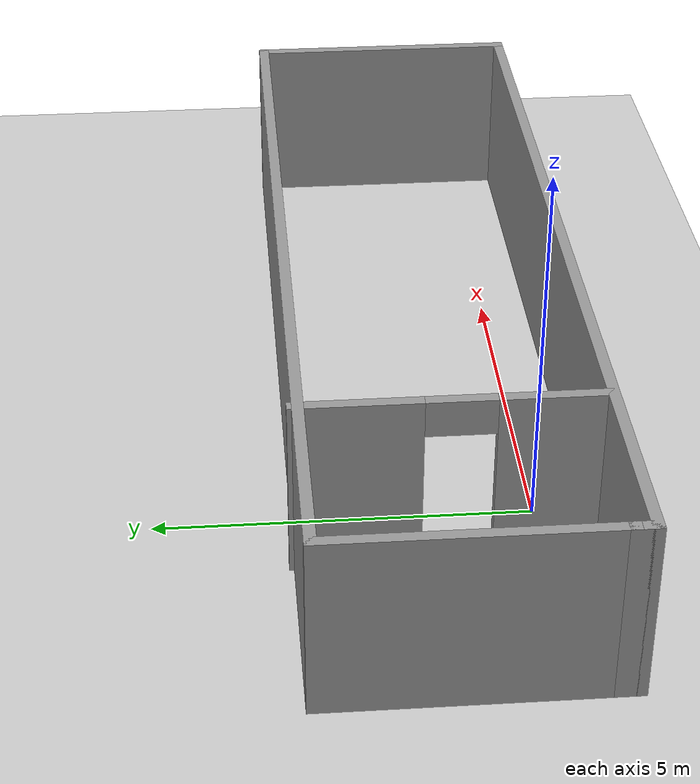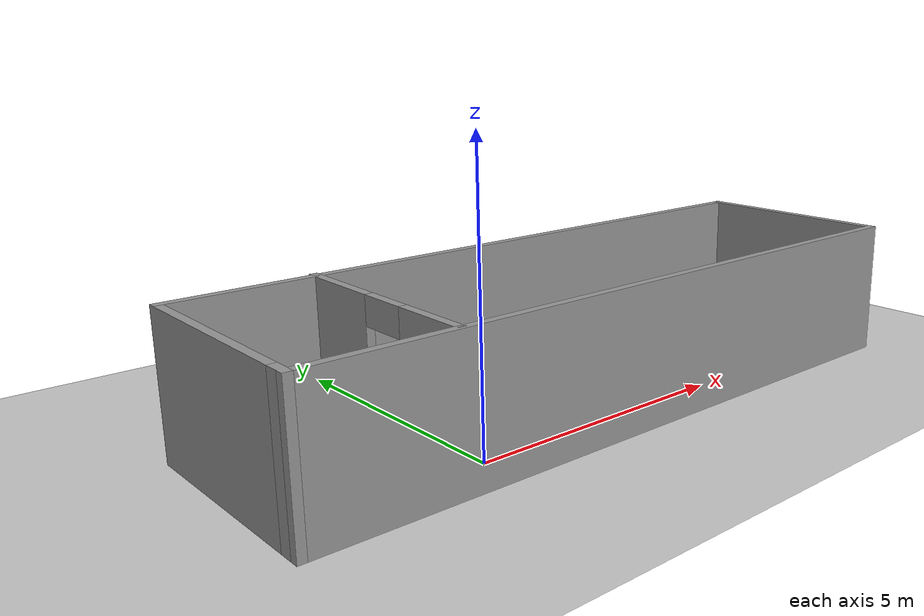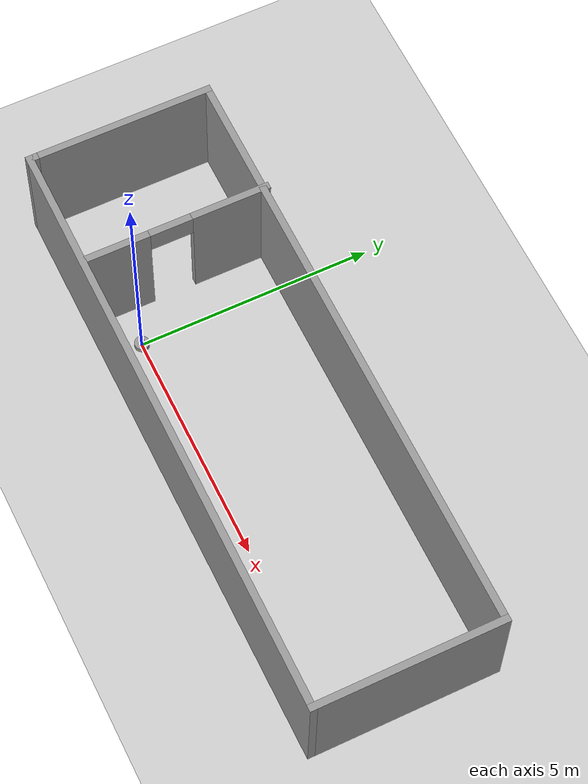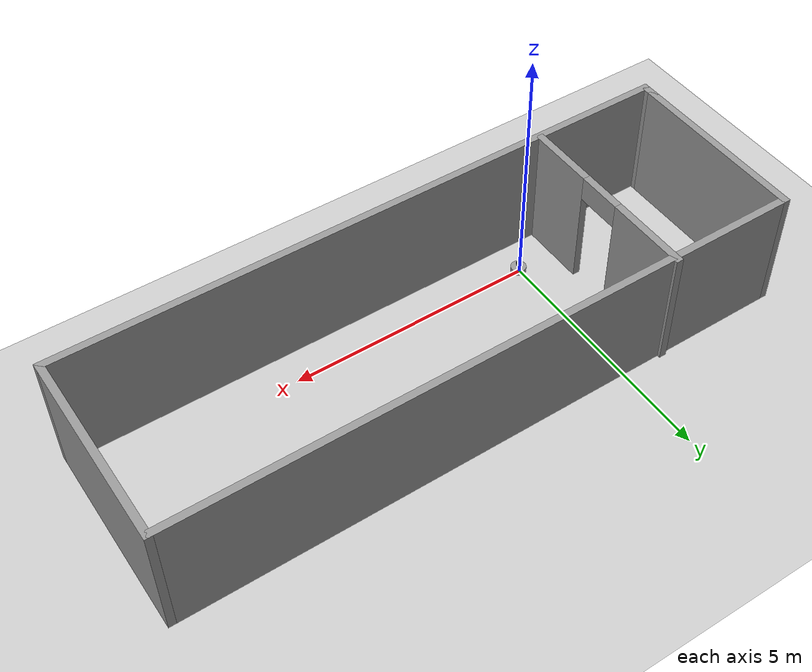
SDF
<sdf version="1.7">
 <world name="default">
  <light name="sun" type="directional">
   <pose>0 0 10 0 -0 0</pose>
   <diffuse>0.8 0.8 0.8 1</diffuse>
   <specular>0.2 0.2 0.2 1</specular>
   <attenuation>
    <range>1000</range>
    <constant>0.9</constant>
    <linear>0.01</linear>
    <quadratic>0.001</quadratic>
   </attenuation>
   <direction>-0.5 0.1 -0.9</direction>
   <spot><inner_angle>0</inner_angle><outer_angle>0</outer_angle><falloff>0</falloff></spot>
  </light>
  <model name="ground_plane">
   <static>1</static>
   <link name="link">
    <collision name="collision">
     <geometry><plane><normal>0 0 1</normal><size>100 100</size></plane></geometry>
     <surface>
      <contact><collide_bitmask>65535</collide_bitmask></contact>
      <friction><ode><mu>100</mu><mu2>50</mu2></ode></friction>
     </surface>
    </collision>
    <visual name="visual">
     <cast_shadows>0</cast_shadows>
     <geometry><plane><normal>0 0 1</normal><size>100 100</size></plane></geometry>
     <material>
      <script><uri>file://media/materials/scripts/gazebo.material</uri><name>Gazebo/Grey</name></script>
     </material>
    </visual>
   </link>
  </model>
  <gravity>0 0 -9.8</gravity>
  <magnetic_field>6e-06 2.3e-05 -4.2e-05</magnetic_field>
  <atmosphere type="adiabatic"/>
  <physics type="ode">
   <max_step_size>0.001</max_step_size>
   <real_time_factor>1</real_time_factor>
   <real_time_update_rate>1000</real_time_update_rate>
  </physics>
  <scene><ambient>0.4 0.4 0.4 1</ambient><background>0.7 0.7 0.7 1</background><shadows>1</shadows></scene>
  <spherical_coordinates>
   <surface_model>EARTH_WGS84</surface_model>
   <latitude_deg>0</latitude_deg>
   <longitude_deg>0</longitude_deg>
   <elevation>0</elevation>
   <heading_deg>0</heading_deg>
  </spherical_coordinates>
  <model name="my_bot">
   <link name="base_link">
    <inertial>
     <pose>-0.07598 0 0.053416 0 -0 0</pose>
     <mass>1.02</mass>
     <inertia>
      <ixx>0.00313923</ixx>
      <ixy>0</ixy>
      <ixz>0.000122784</ixz>
      <iyy>0.0036775</iyy>
      <iyz>0</iyz>
      <izz>0.00454324</izz>
     </inertia>
    </inertial>
    <collision name="base_link_fixed_joint_lump__back_caster_wheel_link_collision">
     <pose>-0.145 0 -0.0258 0 -0 0</pose>
     <geometry><sphere><radius>0.01</radius></sphere></geometry>
     <surface><friction><ode><mu>0.001</mu><mu2>0.001</mu2></ode></friction></surface>
    </collision>
    <collision name="base_link_fixed_joint_lump__front_caster_wheel_link_collision_1">
     <pose>0.145 0 -0.0258 0 -0 0</pose>
     <geometry><sphere><radius>0.01</radius></sphere></geometry>
     <surface><friction><ode><mu>0.001</mu><mu2>0.001</mu2></ode></friction></surface>
    </collision>
    <visual name="base_link_fixed_joint_lump__chassis_link_visual">
     <pose>0 0 0.055 0 -0 0</pose>
     <geometry><cylinder><length>0.11</length><radius>0.155</radius></cylinder></geometry>
     <material>
      <script><name>Gazebo/Grey</name><uri>file://media/materials/scripts/gazebo.material</uri></script>
     </material>
    </visual>
    <visual name="base_link_fixed_joint_lump__back_caster_wheel_link_visual_1">
     <pose>-0.145 0 -0.0258 0 -0 0</pose>
     <geometry><sphere><radius>0.01</radius></sphere></geometry>
     <material>
      <script><name>Gazebo/Red</name><uri>file://media/materials/scripts/gazebo.material</uri></script>
     </material>
    </visual>
    <visual name="base_link_fixed_joint_lump__back_caster_holder_visual_2">
     <pose>-0.145 0 0 0 -0 0</pose>
     <geometry><cylinder><length>-0.0516</length><radius>0.005</radius></cylinder></geometry>
    </visual>
    <visual name="base_link_fixed_joint_lump__front_caster_wheel_link_visual_3">
     <pose>0.145 0 -0.0258 0 -0 0</pose>
     <geometry><sphere><radius>0.01</radius></sphere></geometry>
     <material>
      <script><name>Gazebo/Green</name><uri>file://media/materials/scripts/gazebo.material</uri></script>
     </material>
    </visual>
    <visual name="base_link_fixed_joint_lump__caster_holder_visual_4">
     <pose>0.145 0 0 0 -0 0</pose>
     <geometry><cylinder><length>-0.0516</length><radius>0.005</radius></cylinder></geometry>
    </visual>
    <visual name="base_link_fixed_joint_lump__laser_frame_visual_5">
     <pose>0 0 0.18 0 -0 0</pose>
     <geometry><cylinder><length>0.04</length><radius>0.05</radius></cylinder></geometry>
     <material>
      <script><name>Gazebo/Black</name><uri>file://media/materials/scripts/gazebo.material</uri></script>
     </material>
    </visual>
    <sensor name="laser" type="ray">
     <visualize>0</visualize>
     <update_rate>100</update_rate>
     <ray>
      <scan>
       <horizontal>
        <samples>360</samples>
        <min_angle>-3.14</min_angle>
        <max_angle>3.14</max_angle>
        <resolution>1</resolution>
       </horizontal>
       <vertical><samples>1</samples><min_angle>0</min_angle><max_angle>0</max_angle></vertical>
      </scan>
      <range><min>0.3</min><max>12</max></range>
     </ray>
     <plugin name="laser_controller" filename="libgazebo_ros_ray_sensor.so">
      <ros><argument>~/out:=scan</argument></ros>
      <output_type>sensor_msgs/LaserScan</output_type>
      <frame_name>laser_frame</frame_name>
     </plugin>
     <pose>0 0 0.18 0 -0 0</pose>
    </sensor>
   </link>
   <joint name="left_wheel_joint" type="revolute">
    <pose relative_to="base_link">0 0.12 0 -1.5708 0 0</pose>
    <parent>base_link</parent>
    <child>left_wheel_link</child>
    <axis>
     <xyz>0 0 1</xyz>
     <limit><lower>-1e+16</lower><upper>1e+16</upper></limit>
     <dynamics><spring_reference>0</spring_reference><spring_stiffness>0</spring_stiffness></dynamics>
    </axis>
   </joint>
   <link name="left_wheel_link">
    <pose relative_to="left_wheel_joint">0 0 0 0 -0 0</pose>
    <inertial>
     <mass>0.037</mass>
     <inertia>
      <ixx>1.52556e-05</ixx>
      <ixy>0</ixy>
      <ixz>0</ixz>
      <iyy>1.52556e-05</iyy>
      <iyz>0</iyz>
      <izz>2.60156e-05</izz>
     </inertia>
    </inertial>
    <collision name="left_wheel_link_collision">
     <geometry><sphere><radius>0.0375</radius></sphere></geometry>
     <surface>
      <contact><ode><kp>1e+08</kp><kd>1</kd><min_depth>0.001</min_depth></ode></contact>
      <friction><ode><mu>0.9</mu><mu2>0.9</mu2></ode></friction>
     </surface>
    </collision>
    <visual name="left_wheel_link_visual">
     <geometry><cylinder><length>0.027</length><radius>0.0375</radius></cylinder></geometry>
     <material>
      <script><name>Gazebo/Black</name><uri>file://media/materials/scripts/gazebo.material</uri></script>
     </material>
    </visual>
   </link>
   <joint name="right_wheel_joint" type="revolute">
    <pose relative_to="base_link">0 -0.12 0 -1.5708 0 0</pose>
    <parent>base_link</parent>
    <child>right_wheel_link</child>
    <axis>
     <xyz>0 0 1</xyz>
     <limit><lower>-1e+16</lower><upper>1e+16</upper></limit>
     <dynamics><spring_reference>0</spring_reference><spring_stiffness>0</spring_stiffness></dynamics>
    </axis>
   </joint>
   <link name="right_wheel_link">
    <pose relative_to="right_wheel_joint">0 0 0 0 -0 0</pose>
    <inertial>
     <mass>0.037</mass>
     <inertia>
      <ixx>1.52556e-05</ixx>
      <ixy>0</ixy>
      <ixz>0</ixz>
      <iyy>1.52556e-05</iyy>
      <iyz>0</iyz>
      <izz>2.60156e-05</izz>
     </inertia>
    </inertial>
    <collision name="right_wheel_link_collision">
     <geometry><sphere><radius>0.0375</radius></sphere></geometry>
     <surface>
      <contact><ode><kp>1e+08</kp><kd>1</kd><min_depth>0.001</min_depth></ode></contact>
      <friction><ode><mu>0.9</mu><mu2>0.9</mu2></ode></friction>
     </surface>
    </collision>
    <visual name="right_wheel_link_visual">
     <geometry><cylinder><length>0.027</length><radius>0.0375</radius></cylinder></geometry>
     <material>
      <script><name>Gazebo/Black</name><uri>file://media/materials/scripts/gazebo.material</uri></script>
     </material>
    </visual>
   </link>
   <plugin name="diff_drive" filename="libgazebo_ros_diff_drive.so">
    <left_joint>left_wheel_joint</left_joint>
    <right_joint>right_wheel_joint</right_joint>
    <wheel_separation>0.225</wheel_separation>
    <wheel_diameter>0.07</wheel_diameter>
    <max_wheel_torque>200</max_wheel_torque>
    <max_wheel_acceleration>10.0</max_wheel_acceleration>
    <odometry_frame>odom</odometry_frame>
    <robot_base_frame>base_link</robot_base_frame>
    <publish_odom>1</publish_odom>
    <publish_odom_tf>1</publish_odom_tf>
    <publish_wheel_tf>1</publish_wheel_tf>
   </plugin>
   <frame name="base_footprint_joint" attached_to="base_link"/>
   <frame name="base_footprint" attached_to="base_footprint_joint"/>
   <frame name="back_caster_wheel_joint" attached_to="chassis_link"><pose>0.01 0 -0.0258 0 -0 0</pose></frame>
   <frame name="back_caster_wheel_link" attached_to="back_caster_wheel_joint"/>
   <frame name="back_holder_joint" attached_to="chassis_link"><pose>0.01 0 0 0 -0 0</pose></frame>
   <frame name="back_caster_holder" attached_to="back_holder_joint"/>
   <frame name="front_caster_wheel_joint" attached_to="chassis_link"><pose>0.3 0 -0.0258 0 -0 0</pose></frame>
   <frame name="front_caster_wheel_link" attached_to="front_caster_wheel_joint"/>
   <frame name="holder_joint" attached_to="chassis_link"><pose>0.3 0 0 0 -0 0</pose></frame>
   <frame name="caster_holder" attached_to="holder_joint"/>
   <frame name="laser_joint" attached_to="chassis_link"><pose>0.155 0 0.18 0 -0 0</pose></frame>
   <frame name="laser_frame" attached_to="laser_joint"/>
   <frame name="chassis_joint" attached_to="base_link"><pose>-0.155 0 0 0 -0 0</pose></frame>
   <frame name="chassis_link" attached_to="chassis_joint"/>
   <pose>0.027084 -0.000119 0.0365 0 -0.004861 -0.008108</pose>
  </model>
  <model name="housemini">
   <pose>2.85 1.21534 0 0 -0 0</pose>
   <link name="Wall_0">
    <collision name="Wall_0_Collision">
     <geometry><box><size>3.75 0.15 2.5</size></box></geometry>
     <pose>0 0 1.25 0 -0 0</pose>
    </collision>
    <visual name="Wall_0_Visual">
     <pose>0 0 1.25 0 -0 0</pose>
     <geometry><box><size>3.75 0.15 2.5</size></box></geometry>
     <material>
      <script><uri>file://media/materials/scripts/gazebo.material</uri><name>Gazebo/Grey</name></script>
      <ambient>1 1 1 1</ambient>
     </material>
     <meta><layer>0</layer></meta>
    </visual>
    <pose>-6.3 0.094662 0 0 -0 1.5708</pose>
   </link>
   <link name="Wall_1">
    <collision name="Wall_1_Collision">
     <geometry><box><size>12.75 0.15 2.5</size></box></geometry>
     <pose>0 0 1.25 0 -0 0</pose>
    </collision>
    <visual name="Wall_1_Visual">
     <pose>0 0 1.25 0 -0 0</pose>
     <geometry><box><size>12.75 0.15 2.5</size></box></geometry>
     <material>
      <script><uri>file://media/materials/scripts/gazebo.material</uri><name>Gazebo/Grey</name></script>
      <ambient>1 1 1 1</ambient>
     </material>
     <meta><layer>0</layer></meta>
    </visual>
    <pose>-0 1.89466 0 0 -0 0</pose>
   </link>
   <link name="Wall_2">
    <collision name="Wall_2_Collision">
     <geometry><box><size>4 0.15 2.5</size></box></geometry>
     <pose>0 0 1.25 0 -0 0</pose>
    </collision>
    <visual name="Wall_2_Visual">
     <pose>0 0 1.25 0 -0 0</pose>
     <geometry><box><size>4 0.15 2.5</size></box></geometry>
     <material>
      <script><uri>file://media/materials/scripts/gazebo.material</uri><name>Gazebo/Grey</name></script>
      <ambient>1 1 1 1</ambient>
     </material>
     <meta><layer>0</layer></meta>
    </visual>
    <pose>6.3 -0.030338 0 0 -0 -1.5708</pose>
   </link>
   <link name="Wall_3">
    <collision name="Wall_3_Collision">
     <geometry><box><size>12.75 0.15 2.5</size></box></geometry>
     <pose>0 0 1.25 0 -0 0</pose>
    </collision>
    <visual name="Wall_3_Visual">
     <pose>0 0 1.25 0 -0 0</pose>
     <geometry><box><size>12.75 0.15 2.5</size></box></geometry>
     <material>
      <script><uri>file://media/materials/scripts/gazebo.material</uri><name>Gazebo/Grey</name></script>
      <ambient>1 1 1 1</ambient>
     </material>
     <meta><layer>0</layer></meta>
    </visual>
    <pose>-0 -1.95534 0 0 -0 3.14159</pose>
   </link>
   <link name="Wall_4">
    <collision name="Wall_4_Collision">
     <geometry><box><size>0.4 0.15 2.5</size></box></geometry>
     <pose>0 0 1.25 0 -0 0</pose>
    </collision>
    <visual name="Wall_4_Visual">
     <pose>0 0 1.25 0 -0 0</pose>
     <geometry><box><size>0.4 0.15 2.5</size></box></geometry>
     <material>
      <script><uri>file://media/materials/scripts/gazebo.material</uri><name>Gazebo/Grey</name></script>
      <ambient>1 1 1 1</ambient>
     </material>
     <meta><layer>0</layer></meta>
    </visual>
    <pose>-6.3 -1.83034 0 0 -0 1.5708</pose>
   </link>
   <link name="Wall_6">
    <pose>-3.73449 0.030338 0 0 -0 -1.5708</pose>
    <visual name="Wall_6_Visual_0">
     <pose>-1.16091 0 1.25 0 -0 0</pose>
     <geometry><box><size>1.67818 0.15 2.5</size></box></geometry>
     <material>
      <script><uri>file://media/materials/scripts/gazebo.material</uri><name>Gazebo/Grey</name></script>
      <ambient>1 1 1 1</ambient>
     </material>
     <meta><layer>0</layer></meta>
    </visual>
    <collision name="Wall_6_Collision_0">
     <geometry><box><size>1.67818 0.15 2.5</size></box></geometry>
     <pose>-1.16091 0 1.25 0 -0 0</pose>
    </collision>
    <visual name="Wall_6_Visual_1">
     <pose>1.28909 0 1.25 0 -0 0</pose>
     <geometry><box><size>1.42182 0.15 2.5</size></box></geometry>
     <material>
      <script><uri>file://media/materials/scripts/gazebo.material</uri><name>Gazebo/Grey</name></script>
      <ambient>1 1 1 1</ambient>
     </material>
     <meta><layer>0</layer></meta>
    </visual>
    <collision name="Wall_6_Collision_1">
     <geometry><box><size>1.42182 0.15 2.5</size></box></geometry>
     <pose>1.28909 0 1.25 0 -0 0</pose>
    </collision>
    <visual name="Wall_6_Visual_2">
     <pose>0.128181 0 2.25 0 -0 0</pose>
     <geometry><box><size>0.9 0.15 0.5</size></box></geometry>
     <material>
      <script><uri>file://media/materials/scripts/gazebo.material</uri><name>Gazebo/Grey</name></script>
      <ambient>1 1 1 1</ambient>
     </material>
     <meta><layer>0</layer></meta>
    </visual>
    <collision name="Wall_6_Collision_2">
     <geometry><box><size>0.9 0.15 0.5</size></box></geometry>
     <pose>0.128181 0 2.25 0 -0 0</pose>
    </collision>
   </link>
   <static>1</static>
  </model>
 </world>
</sdf>
